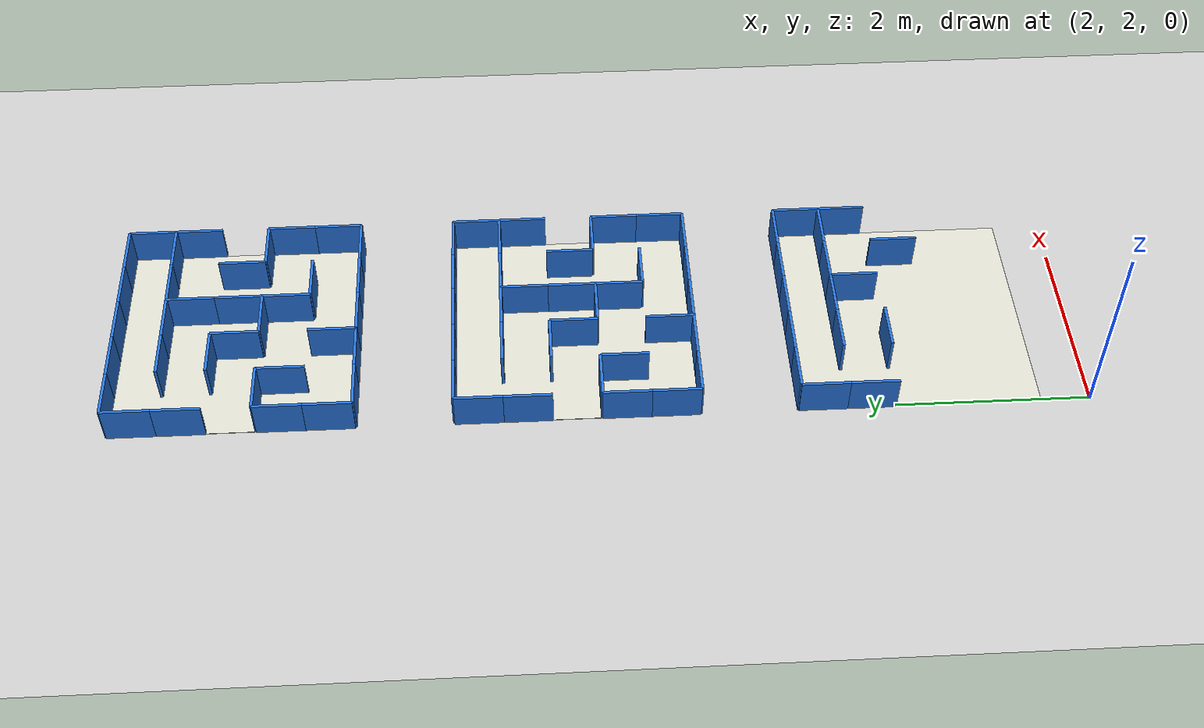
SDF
<sdf version="1.10">
 <world name="nhom8_mecanum">
  <model name="ground_plane">
   <static>true</static>
   <link name="link">
    <collision name="collision">
     <geometry><plane><normal>0 0 1</normal><size>50 50</size></plane></geometry>
     <surface><friction><ode><mu>40</mu></ode></friction></surface>
    </collision>
    <visual name="visual">
     <geometry><plane><normal>0 0 1</normal><size>50 50</size></plane></geometry>
     <material>
      <ambient>0.8 0.8 0.8 1</ambient>
      <diffuse>0.8 0.8 0.8 1</diffuse>
      <specular>0.8 0.8 0.8 1</specular>
     </material>
    </visual>
   </link>
  </model>
  <model name="hw_0_3_m2">
   <static>true</static>
   <pose>2.0000 4.250000 0.2000 0 0 1.5708</pose>
   <link name="link">
    <collision name="col"><geometry><box><size>0.5000 0.0300 0.4000</size></box></geometry></collision>
    <visual name="vis">
     <geometry><box><size>0.5000 0.0300 0.4000</size></box></geometry>
     <material><ambient>0.15 0.45 0.85 1</ambient><diffuse>0.15 0.45 0.85 1</diffuse></material>
    </visual>
   </link>
  </model>
  <model name="hw_0_4_m2">
   <static>true</static>
   <pose>2.0000 4.750000 0.2000 0 0 1.5708</pose>
   <link name="link">
    <collision name="col"><geometry><box><size>0.5000 0.0300 0.4000</size></box></geometry></collision>
    <visual name="vis">
     <geometry><box><size>0.5000 0.0300 0.4000</size></box></geometry>
     <material><ambient>0.15 0.45 0.85 1</ambient><diffuse>0.15 0.45 0.85 1</diffuse></material>
    </visual>
   </link>
  </model>
  <model name="hw_3_3_m2">
   <static>true</static>
   <pose>3.5000 4.250000 0.2000 0 0 1.5708</pose>
   <link name="link">
    <collision name="col"><geometry><box><size>0.5000 0.0300 0.4000</size></box></geometry></collision>
    <visual name="vis">
     <geometry><box><size>0.5000 0.0300 0.4000</size></box></geometry>
     <material><ambient>0.15 0.45 0.85 1</ambient><diffuse>0.15 0.45 0.85 1</diffuse></material>
    </visual>
   </link>
  </model>
  <model name="hw_4_2_m2">
   <static>true</static>
   <pose>4.0000 3.750000 0.2000 0 0 1.5708</pose>
   <link name="link">
    <collision name="col"><geometry><box><size>0.5000 0.0300 0.4000</size></box></geometry></collision>
    <visual name="vis">
     <geometry><box><size>0.5000 0.0300 0.4000</size></box></geometry>
     <material><ambient>0.15 0.45 0.85 1</ambient><diffuse>0.15 0.45 0.85 1</diffuse></material>
    </visual>
   </link>
  </model>
  <model name="hw_5_3_m2">
   <static>true</static>
   <pose>4.5000 4.250000 0.2000 0 0 1.5708</pose>
   <link name="link">
    <collision name="col"><geometry><box><size>0.5000 0.0300 0.4000</size></box></geometry></collision>
    <visual name="vis">
     <geometry><box><size>0.5000 0.0300 0.4000</size></box></geometry>
     <material><ambient>0.15 0.45 0.85 1</ambient><diffuse>0.15 0.45 0.85 1</diffuse></material>
    </visual>
   </link>
  </model>
  <model name="hw_5_4_m2">
   <static>true</static>
   <pose>4.5000 4.750000 0.2000 0 0 1.5708</pose>
   <link name="link">
    <collision name="col"><geometry><box><size>0.5000 0.0300 0.4000</size></box></geometry></collision>
    <visual name="vis">
     <geometry><box><size>0.5000 0.0300 0.4000</size></box></geometry>
     <material><ambient>0.15 0.45 0.85 1</ambient><diffuse>0.15 0.45 0.85 1</diffuse></material>
    </visual>
   </link>
  </model>
  <model name="vw_0_5_m2">
   <static>true</static>
   <pose>2.2500 5.000000 0.2000 0 0 1.5708</pose>
   <link name="link">
    <collision name="col"><geometry><box><size>0.0300 0.5000 0.4000</size></box></geometry></collision>
    <visual name="vis">
     <geometry><box><size>0.0300 0.5000 0.4000</size></box></geometry>
     <material><ambient>0.15 0.45 0.85 1</ambient><diffuse>0.15 0.45 0.85 1</diffuse></material>
    </visual>
   </link>
  </model>
  <model name="vw_1_3_m2">
   <static>true</static>
   <pose>2.7500 4.000000 0.2000 0 0 1.5708</pose>
   <link name="link">
    <collision name="col"><geometry><box><size>0.0300 0.5000 0.4000</size></box></geometry></collision>
    <visual name="vis">
     <geometry><box><size>0.0300 0.5000 0.4000</size></box></geometry>
     <material><ambient>0.15 0.45 0.85 1</ambient><diffuse>0.15 0.45 0.85 1</diffuse></material>
    </visual>
   </link>
  </model>
  <model name="vw_1_4_m2">
   <static>true</static>
   <pose>2.7500 4.500000 0.2000 0 0 1.5708</pose>
   <link name="link">
    <collision name="col"><geometry><box><size>0.0300 0.5000 0.4000</size></box></geometry></collision>
    <visual name="vis">
     <geometry><box><size>0.0300 0.5000 0.4000</size></box></geometry>
     <material><ambient>0.15 0.45 0.85 1</ambient><diffuse>0.15 0.45 0.85 1</diffuse></material>
    </visual>
   </link>
  </model>
  <model name="vw_1_5_m2">
   <static>true</static>
   <pose>2.7500 5.000000 0.2000 0 0 1.5708</pose>
   <link name="link">
    <collision name="col"><geometry><box><size>0.0300 0.5000 0.4000</size></box></geometry></collision>
    <visual name="vis">
     <geometry><box><size>0.0300 0.5000 0.4000</size></box></geometry>
     <material><ambient>0.15 0.45 0.85 1</ambient><diffuse>0.15 0.45 0.85 1</diffuse></material>
    </visual>
   </link>
  </model>
  <model name="vw_2_4_m2">
   <static>true</static>
   <pose>3.2500 4.500000 0.2000 0 0 1.5708</pose>
   <link name="link">
    <collision name="col"><geometry><box><size>0.0300 0.5000 0.4000</size></box></geometry></collision>
    <visual name="vis">
     <geometry><box><size>0.0300 0.5000 0.4000</size></box></geometry>
     <material><ambient>0.15 0.45 0.85 1</ambient><diffuse>0.15 0.45 0.85 1</diffuse></material>
    </visual>
   </link>
  </model>
  <model name="vw_2_5_m2">
   <static>true</static>
   <pose>3.2500 5.000000 0.2000 0 0 1.5708</pose>
   <link name="link">
    <collision name="col"><geometry><box><size>0.0300 0.5000 0.4000</size></box></geometry></collision>
    <visual name="vis">
     <geometry><box><size>0.0300 0.5000 0.4000</size></box></geometry>
     <material><ambient>0.15 0.45 0.85 1</ambient><diffuse>0.15 0.45 0.85 1</diffuse></material>
    </visual>
   </link>
  </model>
  <model name="vw_3_4_m2">
   <static>true</static>
   <pose>3.7500 4.500000 0.2000 0 0 1.5708</pose>
   <link name="link">
    <collision name="col"><geometry><box><size>0.0300 0.5000 0.4000</size></box></geometry></collision>
    <visual name="vis">
     <geometry><box><size>0.0300 0.5000 0.4000</size></box></geometry>
     <material><ambient>0.15 0.45 0.85 1</ambient><diffuse>0.15 0.45 0.85 1</diffuse></material>
    </visual>
   </link>
  </model>
  <model name="vw_3_5_m2">
   <static>true</static>
   <pose>3.7500 5.000000 0.2000 0 0 1.5708</pose>
   <link name="link">
    <collision name="col"><geometry><box><size>0.0300 0.5000 0.4000</size></box></geometry></collision>
    <visual name="vis">
     <geometry><box><size>0.0300 0.5000 0.4000</size></box></geometry>
     <material><ambient>0.15 0.45 0.85 1</ambient><diffuse>0.15 0.45 0.85 1</diffuse></material>
    </visual>
   </link>
  </model>
  <model name="vw_4_4_m2">
   <static>true</static>
   <pose>4.2500 4.500000 0.2000 0 0 1.5708</pose>
   <link name="link">
    <collision name="col"><geometry><box><size>0.0300 0.5000 0.4000</size></box></geometry></collision>
    <visual name="vis">
     <geometry><box><size>0.0300 0.5000 0.4000</size></box></geometry>
     <material><ambient>0.15 0.45 0.85 1</ambient><diffuse>0.15 0.45 0.85 1</diffuse></material>
    </visual>
   </link>
  </model>
  <model name="vw_4_5_m2">
   <static>true</static>
   <pose>4.2500 5.000000 0.2000 0 0 1.5708</pose>
   <link name="link">
    <collision name="col"><geometry><box><size>0.0300 0.5000 0.4000</size></box></geometry></collision>
    <visual name="vis">
     <geometry><box><size>0.0300 0.5000 0.4000</size></box></geometry>
     <material><ambient>0.15 0.45 0.85 1</ambient><diffuse>0.15 0.45 0.85 1</diffuse></material>
    </visual>
   </link>
  </model>
  <model name="floor_m2">
   <static>true</static>
   <pose>3.2500 3.750000 -0.02 0 0 1.5708</pose>
   <link name="link">
    <collision name="col"><geometry><box><size>2.50 2.50 0.03</size></box></geometry></collision>
    <visual name="vis">
     <geometry><box><size>2.50 2.50 0.03</size></box></geometry>
     <material><ambient>0.87 0.87 0.82 1</ambient><diffuse>0.87 0.87 0.82 1</diffuse></material>
    </visual>
   </link>
  </model>
  <model name="hw_0_0_m3">
   <static>true</static>
   <pose>2.0000 6.250000 0.2000 0 0 1.5708</pose>
   <link name="link">
    <collision name="col"><geometry><box><size>0.5000 0.0300 0.4000</size></box></geometry></collision>
    <visual name="vis">
     <geometry><box><size>0.5000 0.0300 0.4000</size></box></geometry>
     <material><ambient>0.15 0.45 0.85 1</ambient><diffuse>0.15 0.45 0.85 1</diffuse></material>
    </visual>
   </link>
  </model>
  <model name="hw_0_1_m3">
   <static>true</static>
   <pose>2.0000 6.750000 0.2000 0 0 1.5708</pose>
   <link name="link">
    <collision name="col"><geometry><box><size>0.5000 0.0300 0.4000</size></box></geometry></collision>
    <visual name="vis">
     <geometry><box><size>0.5000 0.0300 0.4000</size></box></geometry>
     <material><ambient>0.15 0.45 0.85 1</ambient><diffuse>0.15 0.45 0.85 1</diffuse></material>
    </visual>
   </link>
  </model>
  <model name="hw_0_3_m3">
   <static>true</static>
   <pose>2.0000 7.750000 0.2000 0 0 1.5708</pose>
   <link name="link">
    <collision name="col"><geometry><box><size>0.5000 0.0300 0.4000</size></box></geometry></collision>
    <visual name="vis">
     <geometry><box><size>0.5000 0.0300 0.4000</size></box></geometry>
     <material><ambient>0.15 0.45 0.85 1</ambient><diffuse>0.15 0.45 0.85 1</diffuse></material>
    </visual>
   </link>
  </model>
  <model name="hw_0_4_m3">
   <static>true</static>
   <pose>2.0000 8.250000 0.2000 0 0 1.5708</pose>
   <link name="link">
    <collision name="col"><geometry><box><size>0.5000 0.0300 0.4000</size></box></geometry></collision>
    <visual name="vis">
     <geometry><box><size>0.5000 0.0300 0.4000</size></box></geometry>
     <material><ambient>0.15 0.45 0.85 1</ambient><diffuse>0.15 0.45 0.85 1</diffuse></material>
    </visual>
   </link>
  </model>
  <model name="hw_1_1_m3">
   <static>true</static>
   <pose>2.5000 6.750000 0.2000 0 0 1.5708</pose>
   <link name="link">
    <collision name="col"><geometry><box><size>0.5000 0.0300 0.4000</size></box></geometry></collision>
    <visual name="vis">
     <geometry><box><size>0.5000 0.0300 0.4000</size></box></geometry>
     <material><ambient>0.15 0.45 0.85 1</ambient><diffuse>0.15 0.45 0.85 1</diffuse></material>
    </visual>
   </link>
  </model>
  <model name="hw_2_0_m3">
   <static>true</static>
   <pose>3.0000 6.250000 0.2000 0 0 1.5708</pose>
   <link name="link">
    <collision name="col"><geometry><box><size>0.5000 0.0300 0.4000</size></box></geometry></collision>
    <visual name="vis">
     <geometry><box><size>0.5000 0.0300 0.4000</size></box></geometry>
     <material><ambient>0.15 0.45 0.85 1</ambient><diffuse>0.15 0.45 0.85 1</diffuse></material>
    </visual>
   </link>
  </model>
  <model name="hw_2_2_m3">
   <static>true</static>
   <pose>3.0000 7.250000 0.2000 0 0 1.5708</pose>
   <link name="link">
    <collision name="col"><geometry><box><size>0.5000 0.0300 0.4000</size></box></geometry></collision>
    <visual name="vis">
     <geometry><box><size>0.5000 0.0300 0.4000</size></box></geometry>
     <material><ambient>0.15 0.45 0.85 1</ambient><diffuse>0.15 0.45 0.85 1</diffuse></material>
    </visual>
   </link>
  </model>
  <model name="hw_3_1_m3">
   <static>true</static>
   <pose>3.5000 6.750000 0.2000 0 0 1.5708</pose>
   <link name="link">
    <collision name="col"><geometry><box><size>0.5000 0.0300 0.4000</size></box></geometry></collision>
    <visual name="vis">
     <geometry><box><size>0.5000 0.0300 0.4000</size></box></geometry>
     <material><ambient>0.15 0.45 0.85 1</ambient><diffuse>0.15 0.45 0.85 1</diffuse></material>
    </visual>
   </link>
  </model>
  <model name="hw_3_2_m3">
   <static>true</static>
   <pose>3.5000 7.250000 0.2000 0 0 1.5708</pose>
   <link name="link">
    <collision name="col"><geometry><box><size>0.5000 0.0300 0.4000</size></box></geometry></collision>
    <visual name="vis">
     <geometry><box><size>0.5000 0.0300 0.4000</size></box></geometry>
     <material><ambient>0.15 0.45 0.85 1</ambient><diffuse>0.15 0.45 0.85 1</diffuse></material>
    </visual>
   </link>
  </model>
  <model name="hw_3_3_m3">
   <static>true</static>
   <pose>3.5000 7.750000 0.2000 0 0 1.5708</pose>
   <link name="link">
    <collision name="col"><geometry><box><size>0.5000 0.0300 0.4000</size></box></geometry></collision>
    <visual name="vis">
     <geometry><box><size>0.5000 0.0300 0.4000</size></box></geometry>
     <material><ambient>0.15 0.45 0.85 1</ambient><diffuse>0.15 0.45 0.85 1</diffuse></material>
    </visual>
   </link>
  </model>
  <model name="hw_4_2_m3">
   <static>true</static>
   <pose>4.0000 7.250000 0.2000 0 0 1.5708</pose>
   <link name="link">
    <collision name="col"><geometry><box><size>0.5000 0.0300 0.4000</size></box></geometry></collision>
    <visual name="vis">
     <geometry><box><size>0.5000 0.0300 0.4000</size></box></geometry>
     <material><ambient>0.15 0.45 0.85 1</ambient><diffuse>0.15 0.45 0.85 1</diffuse></material>
    </visual>
   </link>
  </model>
  <model name="hw_5_0_m3">
   <static>true</static>
   <pose>4.5000 6.250000 0.2000 0 0 1.5708</pose>
   <link name="link">
    <collision name="col"><geometry><box><size>0.5000 0.0300 0.4000</size></box></geometry></collision>
    <visual name="vis">
     <geometry><box><size>0.5000 0.0300 0.4000</size></box></geometry>
     <material><ambient>0.15 0.45 0.85 1</ambient><diffuse>0.15 0.45 0.85 1</diffuse></material>
    </visual>
   </link>
  </model>
  <model name="hw_5_1_m3">
   <static>true</static>
   <pose>4.5000 6.750000 0.2000 0 0 1.5708</pose>
   <link name="link">
    <collision name="col"><geometry><box><size>0.5000 0.0300 0.4000</size></box></geometry></collision>
    <visual name="vis">
     <geometry><box><size>0.5000 0.0300 0.4000</size></box></geometry>
     <material><ambient>0.15 0.45 0.85 1</ambient><diffuse>0.15 0.45 0.85 1</diffuse></material>
    </visual>
   </link>
  </model>
  <model name="hw_5_3_m3">
   <static>true</static>
   <pose>4.5000 7.750000 0.2000 0 0 1.5708</pose>
   <link name="link">
    <collision name="col"><geometry><box><size>0.5000 0.0300 0.4000</size></box></geometry></collision>
    <visual name="vis">
     <geometry><box><size>0.5000 0.0300 0.4000</size></box></geometry>
     <material><ambient>0.15 0.45 0.85 1</ambient><diffuse>0.15 0.45 0.85 1</diffuse></material>
    </visual>
   </link>
  </model>
  <model name="hw_5_4_m3">
   <static>true</static>
   <pose>4.5000 8.250000 0.2000 0 0 1.5708</pose>
   <link name="link">
    <collision name="col"><geometry><box><size>0.5000 0.0300 0.4000</size></box></geometry></collision>
    <visual name="vis">
     <geometry><box><size>0.5000 0.0300 0.4000</size></box></geometry>
     <material><ambient>0.15 0.45 0.85 1</ambient><diffuse>0.15 0.45 0.85 1</diffuse></material>
    </visual>
   </link>
  </model>
  <model name="vw_0_0_m3">
   <static>true</static>
   <pose>2.2500 6.000000 0.2000 0 0 1.5708</pose>
   <link name="link">
    <collision name="col"><geometry><box><size>0.0300 0.5000 0.4000</size></box></geometry></collision>
    <visual name="vis">
     <geometry><box><size>0.0300 0.5000 0.4000</size></box></geometry>
     <material><ambient>0.15 0.45 0.85 1</ambient><diffuse>0.15 0.45 0.85 1</diffuse></material>
    </visual>
   </link>
  </model>
  <model name="vw_0_2_m3">
   <static>true</static>
   <pose>2.2500 7.000000 0.2000 0 0 1.5708</pose>
   <link name="link">
    <collision name="col"><geometry><box><size>0.0300 0.5000 0.4000</size></box></geometry></collision>
    <visual name="vis">
     <geometry><box><size>0.0300 0.5000 0.4000</size></box></geometry>
     <material><ambient>0.15 0.45 0.85 1</ambient><diffuse>0.15 0.45 0.85 1</diffuse></material>
    </visual>
   </link>
  </model>
  <model name="vw_0_5_m3">
   <static>true</static>
   <pose>2.2500 8.500000 0.2000 0 0 1.5708</pose>
   <link name="link">
    <collision name="col"><geometry><box><size>0.0300 0.5000 0.4000</size></box></geometry></collision>
    <visual name="vis">
     <geometry><box><size>0.0300 0.5000 0.4000</size></box></geometry>
     <material><ambient>0.15 0.45 0.85 1</ambient><diffuse>0.15 0.45 0.85 1</diffuse></material>
    </visual>
   </link>
  </model>
  <model name="vw_1_0_m3">
   <static>true</static>
   <pose>2.7500 6.000000 0.2000 0 0 1.5708</pose>
   <link name="link">
    <collision name="col"><geometry><box><size>0.0300 0.5000 0.4000</size></box></geometry></collision>
    <visual name="vis">
     <geometry><box><size>0.0300 0.5000 0.4000</size></box></geometry>
     <material><ambient>0.15 0.45 0.85 1</ambient><diffuse>0.15 0.45 0.85 1</diffuse></material>
    </visual>
   </link>
  </model>
  <model name="vw_1_3_m3">
   <static>true</static>
   <pose>2.7500 7.500000 0.2000 0 0 1.5708</pose>
   <link name="link">
    <collision name="col"><geometry><box><size>0.0300 0.5000 0.4000</size></box></geometry></collision>
    <visual name="vis">
     <geometry><box><size>0.0300 0.5000 0.4000</size></box></geometry>
     <material><ambient>0.15 0.45 0.85 1</ambient><diffuse>0.15 0.45 0.85 1</diffuse></material>
    </visual>
   </link>
  </model>
  <model name="vw_1_4_m3">
   <static>true</static>
   <pose>2.7500 8.000000 0.2000 0 0 1.5708</pose>
   <link name="link">
    <collision name="col"><geometry><box><size>0.0300 0.5000 0.4000</size></box></geometry></collision>
    <visual name="vis">
     <geometry><box><size>0.0300 0.5000 0.4000</size></box></geometry>
     <material><ambient>0.15 0.45 0.85 1</ambient><diffuse>0.15 0.45 0.85 1</diffuse></material>
    </visual>
   </link>
  </model>
  <model name="vw_1_5_m3">
   <static>true</static>
   <pose>2.7500 8.500000 0.2000 0 0 1.5708</pose>
   <link name="link">
    <collision name="col"><geometry><box><size>0.0300 0.5000 0.4000</size></box></geometry></collision>
    <visual name="vis">
     <geometry><box><size>0.0300 0.5000 0.4000</size></box></geometry>
     <material><ambient>0.15 0.45 0.85 1</ambient><diffuse>0.15 0.45 0.85 1</diffuse></material>
    </visual>
   </link>
  </model>
  <model name="vw_2_0_m3">
   <static>true</static>
   <pose>3.2500 6.000000 0.2000 0 0 1.5708</pose>
   <link name="link">
    <collision name="col"><geometry><box><size>0.0300 0.5000 0.4000</size></box></geometry></collision>
    <visual name="vis">
     <geometry><box><size>0.0300 0.5000 0.4000</size></box></geometry>
     <material><ambient>0.15 0.45 0.85 1</ambient><diffuse>0.15 0.45 0.85 1</diffuse></material>
    </visual>
   </link>
  </model>
  <model name="vw_2_2_m3">
   <static>true</static>
   <pose>3.2500 7.000000 0.2000 0 0 1.5708</pose>
   <link name="link">
    <collision name="col"><geometry><box><size>0.0300 0.5000 0.4000</size></box></geometry></collision>
    <visual name="vis">
     <geometry><box><size>0.0300 0.5000 0.4000</size></box></geometry>
     <material><ambient>0.15 0.45 0.85 1</ambient><diffuse>0.15 0.45 0.85 1</diffuse></material>
    </visual>
   </link>
  </model>
  <model name="vw_2_4_m3">
   <static>true</static>
   <pose>3.2500 8.000000 0.2000 0 0 1.5708</pose>
   <link name="link">
    <collision name="col"><geometry><box><size>0.0300 0.5000 0.4000</size></box></geometry></collision>
    <visual name="vis">
     <geometry><box><size>0.0300 0.5000 0.4000</size></box></geometry>
     <material><ambient>0.15 0.45 0.85 1</ambient><diffuse>0.15 0.45 0.85 1</diffuse></material>
    </visual>
   </link>
  </model>
  <model name="vw_2_5_m3">
   <static>true</static>
   <pose>3.2500 8.500000 0.2000 0 0 1.5708</pose>
   <link name="link">
    <collision name="col"><geometry><box><size>0.0300 0.5000 0.4000</size></box></geometry></collision>
    <visual name="vis">
     <geometry><box><size>0.0300 0.5000 0.4000</size></box></geometry>
     <material><ambient>0.15 0.45 0.85 1</ambient><diffuse>0.15 0.45 0.85 1</diffuse></material>
    </visual>
   </link>
  </model>
  <model name="vw_3_0_m3">
   <static>true</static>
   <pose>3.7500 6.000000 0.2000 0 0 1.5708</pose>
   <link name="link">
    <collision name="col"><geometry><box><size>0.0300 0.5000 0.4000</size></box></geometry></collision>
    <visual name="vis">
     <geometry><box><size>0.0300 0.5000 0.4000</size></box></geometry>
     <material><ambient>0.15 0.45 0.85 1</ambient><diffuse>0.15 0.45 0.85 1</diffuse></material>
    </visual>
   </link>
  </model>
  <model name="vw_3_1_m3">
   <static>true</static>
   <pose>3.7500 6.500000 0.2000 0 0 1.5708</pose>
   <link name="link">
    <collision name="col"><geometry><box><size>0.0300 0.5000 0.4000</size></box></geometry></collision>
    <visual name="vis">
     <geometry><box><size>0.0300 0.5000 0.4000</size></box></geometry>
     <material><ambient>0.15 0.45 0.85 1</ambient><diffuse>0.15 0.45 0.85 1</diffuse></material>
    </visual>
   </link>
  </model>
  <model name="vw_3_4_m3">
   <static>true</static>
   <pose>3.7500 8.000000 0.2000 0 0 1.5708</pose>
   <link name="link">
    <collision name="col"><geometry><box><size>0.0300 0.5000 0.4000</size></box></geometry></collision>
    <visual name="vis">
     <geometry><box><size>0.0300 0.5000 0.4000</size></box></geometry>
     <material><ambient>0.15 0.45 0.85 1</ambient><diffuse>0.15 0.45 0.85 1</diffuse></material>
    </visual>
   </link>
  </model>
  <model name="vw_3_5_m3">
   <static>true</static>
   <pose>3.7500 8.500000 0.2000 0 0 1.5708</pose>
   <link name="link">
    <collision name="col"><geometry><box><size>0.0300 0.5000 0.4000</size></box></geometry></collision>
    <visual name="vis">
     <geometry><box><size>0.0300 0.5000 0.4000</size></box></geometry>
     <material><ambient>0.15 0.45 0.85 1</ambient><diffuse>0.15 0.45 0.85 1</diffuse></material>
    </visual>
   </link>
  </model>
  <model name="vw_4_0_m3">
   <static>true</static>
   <pose>4.2500 6.000000 0.2000 0 0 1.5708</pose>
   <link name="link">
    <collision name="col"><geometry><box><size>0.0300 0.5000 0.4000</size></box></geometry></collision>
    <visual name="vis">
     <geometry><box><size>0.0300 0.5000 0.4000</size></box></geometry>
     <material><ambient>0.15 0.45 0.85 1</ambient><diffuse>0.15 0.45 0.85 1</diffuse></material>
    </visual>
   </link>
  </model>
  <model name="vw_4_2_m3">
   <static>true</static>
   <pose>4.2500 7.000000 0.2000 0 0 1.5708</pose>
   <link name="link">
    <collision name="col"><geometry><box><size>0.0300 0.5000 0.4000</size></box></geometry></collision>
    <visual name="vis">
     <geometry><box><size>0.0300 0.5000 0.4000</size></box></geometry>
     <material><ambient>0.15 0.45 0.85 1</ambient><diffuse>0.15 0.45 0.85 1</diffuse></material>
    </visual>
   </link>
  </model>
  <model name="vw_4_4_m3">
   <static>true</static>
   <pose>4.2500 8.000000 0.2000 0 0 1.5708</pose>
   <link name="link">
    <collision name="col"><geometry><box><size>0.0300 0.5000 0.4000</size></box></geometry></collision>
    <visual name="vis">
     <geometry><box><size>0.0300 0.5000 0.4000</size></box></geometry>
     <material><ambient>0.15 0.45 0.85 1</ambient><diffuse>0.15 0.45 0.85 1</diffuse></material>
    </visual>
   </link>
  </model>
  <model name="vw_4_5_m3">
   <static>true</static>
   <pose>4.2500 8.500000 0.2000 0 0 1.5708</pose>
   <link name="link">
    <collision name="col"><geometry><box><size>0.0300 0.5000 0.4000</size></box></geometry></collision>
    <visual name="vis">
     <geometry><box><size>0.0300 0.5000 0.4000</size></box></geometry>
     <material><ambient>0.15 0.45 0.85 1</ambient><diffuse>0.15 0.45 0.85 1</diffuse></material>
    </visual>
   </link>
  </model>
  <model name="floor_m3">
   <static>true</static>
   <pose>3.2500 7.250000 -0.02 0 0 1.5708</pose>
   <link name="link">
    <collision name="col"><geometry><box><size>2.50 2.50 0.03</size></box></geometry></collision>
    <visual name="vis">
     <geometry><box><size>2.50 2.50 0.03</size></box></geometry>
     <material><ambient>0.87 0.87 0.82 1</ambient><diffuse>0.87 0.87 0.82 1</diffuse></material>
    </visual>
   </link>
  </model>
  <model name="hw_0_0_m4">
   <static>true</static>
   <pose>2.0000 9.750000 0.2000 0 0 1.5708</pose>
   <link name="link">
    <collision name="col"><geometry><box><size>0.5000 0.0300 0.4000</size></box></geometry></collision>
    <visual name="vis">
     <geometry><box><size>0.5000 0.0300 0.4000</size></box></geometry>
     <material><ambient>0.15 0.45 0.85 1</ambient><diffuse>0.15 0.45 0.85 1</diffuse></material>
    </visual>
   </link>
  </model>
  <model name="hw_0_1_m4">
   <static>true</static>
   <pose>2.0000 10.250000 0.2000 0 0 1.5708</pose>
   <link name="link">
    <collision name="col"><geometry><box><size>0.5000 0.0300 0.4000</size></box></geometry></collision>
    <visual name="vis">
     <geometry><box><size>0.5000 0.0300 0.4000</size></box></geometry>
     <material><ambient>0.15 0.45 0.85 1</ambient><diffuse>0.15 0.45 0.85 1</diffuse></material>
    </visual>
   </link>
  </model>
  <model name="hw_0_3_m4">
   <static>true</static>
   <pose>2.0000 11.250000 0.2000 0 0 1.5708</pose>
   <link name="link">
    <collision name="col"><geometry><box><size>0.5000 0.0300 0.4000</size></box></geometry></collision>
    <visual name="vis">
     <geometry><box><size>0.5000 0.0300 0.4000</size></box></geometry>
     <material><ambient>0.15 0.45 0.85 1</ambient><diffuse>0.15 0.45 0.85 1</diffuse></material>
    </visual>
   </link>
  </model>
  <model name="hw_0_4_m4">
   <static>true</static>
   <pose>2.0000 11.750000 0.2000 0 0 1.5708</pose>
   <link name="link">
    <collision name="col"><geometry><box><size>0.5000 0.0300 0.4000</size></box></geometry></collision>
    <visual name="vis">
     <geometry><box><size>0.5000 0.0300 0.4000</size></box></geometry>
     <material><ambient>0.15 0.45 0.85 1</ambient><diffuse>0.15 0.45 0.85 1</diffuse></material>
    </visual>
   </link>
  </model>
  <model name="hw_1_1_m4">
   <static>true</static>
   <pose>2.5000 10.250000 0.2000 0 0 1.5708</pose>
   <link name="link">
    <collision name="col"><geometry><box><size>0.5000 0.0300 0.4000</size></box></geometry></collision>
    <visual name="vis">
     <geometry><box><size>0.5000 0.0300 0.4000</size></box></geometry>
     <material><ambient>0.15 0.45 0.85 1</ambient><diffuse>0.15 0.45 0.85 1</diffuse></material>
    </visual>
   </link>
  </model>
  <model name="hw_2_0_m4">
   <static>true</static>
   <pose>3.0000 9.750000 0.2000 0 0 1.5708</pose>
   <link name="link">
    <collision name="col"><geometry><box><size>0.5000 0.0300 0.4000</size></box></geometry></collision>
    <visual name="vis">
     <geometry><box><size>0.5000 0.0300 0.4000</size></box></geometry>
     <material><ambient>0.15 0.45 0.85 1</ambient><diffuse>0.15 0.45 0.85 1</diffuse></material>
    </visual>
   </link>
  </model>
  <model name="hw_2_2_m4">
   <static>true</static>
   <pose>3.0000 10.750000 0.2000 0 0 1.5708</pose>
   <link name="link">
    <collision name="col"><geometry><box><size>0.5000 0.0300 0.4000</size></box></geometry></collision>
    <visual name="vis">
     <geometry><box><size>0.5000 0.0300 0.4000</size></box></geometry>
     <material><ambient>0.15 0.45 0.85 1</ambient><diffuse>0.15 0.45 0.85 1</diffuse></material>
    </visual>
   </link>
  </model>
  <model name="hw_3_1_m4">
   <static>true</static>
   <pose>3.5000 10.250000 0.2000 0 0 1.5708</pose>
   <link name="link">
    <collision name="col"><geometry><box><size>0.5000 0.0300 0.4000</size></box></geometry></collision>
    <visual name="vis">
     <geometry><box><size>0.5000 0.0300 0.4000</size></box></geometry>
     <material><ambient>0.15 0.45 0.85 1</ambient><diffuse>0.15 0.45 0.85 1</diffuse></material>
    </visual>
   </link>
  </model>
  <model name="hw_3_2_m4">
   <static>true</static>
   <pose>3.5000 10.750000 0.2000 0 0 1.5708</pose>
   <link name="link">
    <collision name="col"><geometry><box><size>0.5000 0.0300 0.4000</size></box></geometry></collision>
    <visual name="vis">
     <geometry><box><size>0.5000 0.0300 0.4000</size></box></geometry>
     <material><ambient>0.15 0.45 0.85 1</ambient><diffuse>0.15 0.45 0.85 1</diffuse></material>
    </visual>
   </link>
  </model>
  <model name="hw_3_3_m4">
   <static>true</static>
   <pose>3.5000 11.250000 0.2000 0 0 1.5708</pose>
   <link name="link">
    <collision name="col"><geometry><box><size>0.5000 0.0300 0.4000</size></box></geometry></collision>
    <visual name="vis">
     <geometry><box><size>0.5000 0.0300 0.4000</size></box></geometry>
     <material><ambient>0.15 0.45 0.85 1</ambient><diffuse>0.15 0.45 0.85 1</diffuse></material>
    </visual>
   </link>
  </model>
  <model name="hw_4_2_m4">
   <static>true</static>
   <pose>4.0000 10.750000 0.2000 0 0 1.5708</pose>
   <link name="link">
    <collision name="col"><geometry><box><size>0.5000 0.0300 0.4000</size></box></geometry></collision>
    <visual name="vis">
     <geometry><box><size>0.5000 0.0300 0.4000</size></box></geometry>
     <material><ambient>0.15 0.45 0.85 1</ambient><diffuse>0.15 0.45 0.85 1</diffuse></material>
    </visual>
   </link>
  </model>
  <model name="hw_5_0_m4">
   <static>true</static>
   <pose>4.5000 9.750000 0.2000 0 0 1.5708</pose>
   <link name="link">
    <collision name="col"><geometry><box><size>0.5000 0.0300 0.4000</size></box></geometry></collision>
    <visual name="vis">
     <geometry><box><size>0.5000 0.0300 0.4000</size></box></geometry>
     <material><ambient>0.15 0.45 0.85 1</ambient><diffuse>0.15 0.45 0.85 1</diffuse></material>
    </visual>
   </link>
  </model>
  <model name="hw_5_1_m4">
   <static>true</static>
   <pose>4.5000 10.250000 0.2000 0 0 1.5708</pose>
   <link name="link">
    <collision name="col"><geometry><box><size>0.5000 0.0300 0.4000</size></box></geometry></collision>
    <visual name="vis">
     <geometry><box><size>0.5000 0.0300 0.4000</size></box></geometry>
     <material><ambient>0.15 0.45 0.85 1</ambient><diffuse>0.15 0.45 0.85 1</diffuse></material>
    </visual>
   </link>
  </model>
  <model name="hw_5_3_m4">
   <static>true</static>
   <pose>4.5000 11.250000 0.2000 0 0 1.5708</pose>
   <link name="link">
    <collision name="col"><geometry><box><size>0.5000 0.0300 0.4000</size></box></geometry></collision>
    <visual name="vis">
     <geometry><box><size>0.5000 0.0300 0.4000</size></box></geometry>
     <material><ambient>0.15 0.45 0.85 1</ambient><diffuse>0.15 0.45 0.85 1</diffuse></material>
    </visual>
   </link>
  </model>
  <model name="hw_5_4_m4">
   <static>true</static>
   <pose>4.5000 11.750000 0.2000 0 0 1.5708</pose>
   <link name="link">
    <collision name="col"><geometry><box><size>0.5000 0.0300 0.4000</size></box></geometry></collision>
    <visual name="vis">
     <geometry><box><size>0.5000 0.0300 0.4000</size></box></geometry>
     <material><ambient>0.15 0.45 0.85 1</ambient><diffuse>0.15 0.45 0.85 1</diffuse></material>
    </visual>
   </link>
  </model>
  <model name="vw_0_0_m4">
   <static>true</static>
   <pose>2.2500 9.500000 0.2000 0 0 1.5708</pose>
   <link name="link">
    <collision name="col"><geometry><box><size>0.0300 0.5000 0.4000</size></box></geometry></collision>
    <visual name="vis">
     <geometry><box><size>0.0300 0.5000 0.4000</size></box></geometry>
     <material><ambient>0.15 0.45 0.85 1</ambient><diffuse>0.15 0.45 0.85 1</diffuse></material>
    </visual>
   </link>
  </model>
  <model name="vw_0_2_m4">
   <static>true</static>
   <pose>2.2500 10.500000 0.2000 0 0 1.5708</pose>
   <link name="link">
    <collision name="col"><geometry><box><size>0.0300 0.5000 0.4000</size></box></geometry></collision>
    <visual name="vis">
     <geometry><box><size>0.0300 0.5000 0.4000</size></box></geometry>
     <material><ambient>0.15 0.45 0.85 1</ambient><diffuse>0.15 0.45 0.85 1</diffuse></material>
    </visual>
   </link>
  </model>
  <model name="vw_0_5_m4">
   <static>true</static>
   <pose>2.2500 12.000000 0.2000 0 0 1.5708</pose>
   <link name="link">
    <collision name="col"><geometry><box><size>0.0300 0.5000 0.4000</size></box></geometry></collision>
    <visual name="vis">
     <geometry><box><size>0.0300 0.5000 0.4000</size></box></geometry>
     <material><ambient>0.15 0.45 0.85 1</ambient><diffuse>0.15 0.45 0.85 1</diffuse></material>
    </visual>
   </link>
  </model>
  <model name="vw_1_0_m4">
   <static>true</static>
   <pose>2.7500 9.500000 0.2000 0 0 1.5708</pose>
   <link name="link">
    <collision name="col"><geometry><box><size>0.0300 0.5000 0.4000</size></box></geometry></collision>
    <visual name="vis">
     <geometry><box><size>0.0300 0.5000 0.4000</size></box></geometry>
     <material><ambient>0.15 0.45 0.85 1</ambient><diffuse>0.15 0.45 0.85 1</diffuse></material>
    </visual>
   </link>
  </model>
  <model name="vw_1_3_m4">
   <static>true</static>
   <pose>2.7500 11.000000 0.2000 0 0 1.5708</pose>
   <link name="link">
    <collision name="col"><geometry><box><size>0.0300 0.5000 0.4000</size></box></geometry></collision>
    <visual name="vis">
     <geometry><box><size>0.0300 0.5000 0.4000</size></box></geometry>
     <material><ambient>0.15 0.45 0.85 1</ambient><diffuse>0.15 0.45 0.85 1</diffuse></material>
    </visual>
   </link>
  </model>
  <model name="vw_1_4_m4">
   <static>true</static>
   <pose>2.7500 11.500000 0.2000 0 0 1.5708</pose>
   <link name="link">
    <collision name="col"><geometry><box><size>0.0300 0.5000 0.4000</size></box></geometry></collision>
    <visual name="vis">
     <geometry><box><size>0.0300 0.5000 0.4000</size></box></geometry>
     <material><ambient>0.15 0.45 0.85 1</ambient><diffuse>0.15 0.45 0.85 1</diffuse></material>
    </visual>
   </link>
  </model>
  <model name="vw_1_5_m4">
   <static>true</static>
   <pose>2.7500 12.000000 0.2000 0 0 1.5708</pose>
   <link name="link">
    <collision name="col"><geometry><box><size>0.0300 0.5000 0.4000</size></box></geometry></collision>
    <visual name="vis">
     <geometry><box><size>0.0300 0.5000 0.4000</size></box></geometry>
     <material><ambient>0.15 0.45 0.85 1</ambient><diffuse>0.15 0.45 0.85 1</diffuse></material>
    </visual>
   </link>
  </model>
  <model name="vw_2_0_m4">
   <static>true</static>
   <pose>3.2500 9.500000 0.2000 0 0 1.5708</pose>
   <link name="link">
    <collision name="col"><geometry><box><size>0.0300 0.5000 0.4000</size></box></geometry></collision>
    <visual name="vis">
     <geometry><box><size>0.0300 0.5000 0.4000</size></box></geometry>
     <material><ambient>0.15 0.45 0.85 1</ambient><diffuse>0.15 0.45 0.85 1</diffuse></material>
    </visual>
   </link>
  </model>
  <model name="vw_2_2_m4">
   <static>true</static>
   <pose>3.2500 10.500000 0.2000 0 0 1.5708</pose>
   <link name="link">
    <collision name="col"><geometry><box><size>0.0300 0.5000 0.4000</size></box></geometry></collision>
    <visual name="vis">
     <geometry><box><size>0.0300 0.5000 0.4000</size></box></geometry>
     <material><ambient>0.15 0.45 0.85 1</ambient><diffuse>0.15 0.45 0.85 1</diffuse></material>
    </visual>
   </link>
  </model>
  <model name="vw_2_4_m4">
   <static>true</static>
   <pose>3.2500 11.500000 0.2000 0 0 1.5708</pose>
   <link name="link">
    <collision name="col"><geometry><box><size>0.0300 0.5000 0.4000</size></box></geometry></collision>
    <visual name="vis">
     <geometry><box><size>0.0300 0.5000 0.4000</size></box></geometry>
     <material><ambient>0.15 0.45 0.85 1</ambient><diffuse>0.15 0.45 0.85 1</diffuse></material>
    </visual>
   </link>
  </model>
  <model name="vw_2_5_m4">
   <static>true</static>
   <pose>3.2500 12.000000 0.2000 0 0 1.5708</pose>
   <link name="link">
    <collision name="col"><geometry><box><size>0.0300 0.5000 0.4000</size></box></geometry></collision>
    <visual name="vis">
     <geometry><box><size>0.0300 0.5000 0.4000</size></box></geometry>
     <material><ambient>0.15 0.45 0.85 1</ambient><diffuse>0.15 0.45 0.85 1</diffuse></material>
    </visual>
   </link>
  </model>
  <model name="vw_3_0_m4">
   <static>true</static>
   <pose>3.7500 9.500000 0.2000 0 0 1.5708</pose>
   <link name="link">
    <collision name="col"><geometry><box><size>0.0300 0.5000 0.4000</size></box></geometry></collision>
    <visual name="vis">
     <geometry><box><size>0.0300 0.5000 0.4000</size></box></geometry>
     <material><ambient>0.15 0.45 0.85 1</ambient><diffuse>0.15 0.45 0.85 1</diffuse></material>
    </visual>
   </link>
  </model>
  <model name="vw_3_1_m4">
   <static>true</static>
   <pose>3.7500 10.000000 0.2000 0 0 1.5708</pose>
   <link name="link">
    <collision name="col"><geometry><box><size>0.0300 0.5000 0.4000</size></box></geometry></collision>
    <visual name="vis">
     <geometry><box><size>0.0300 0.5000 0.4000</size></box></geometry>
     <material><ambient>0.15 0.45 0.85 1</ambient><diffuse>0.15 0.45 0.85 1</diffuse></material>
    </visual>
   </link>
  </model>
  <model name="vw_3_4_m4">
   <static>true</static>
   <pose>3.7500 11.500000 0.2000 0 0 1.5708</pose>
   <link name="link">
    <collision name="col"><geometry><box><size>0.0300 0.5000 0.4000</size></box></geometry></collision>
    <visual name="vis">
     <geometry><box><size>0.0300 0.5000 0.4000</size></box></geometry>
     <material><ambient>0.15 0.45 0.85 1</ambient><diffuse>0.15 0.45 0.85 1</diffuse></material>
    </visual>
   </link>
  </model>
  <model name="vw_3_5_m4">
   <static>true</static>
   <pose>3.7500 12.000000 0.2000 0 0 1.5708</pose>
   <link name="link">
    <collision name="col"><geometry><box><size>0.0300 0.5000 0.4000</size></box></geometry></collision>
    <visual name="vis">
     <geometry><box><size>0.0300 0.5000 0.4000</size></box></geometry>
     <material><ambient>0.15 0.45 0.85 1</ambient><diffuse>0.15 0.45 0.85 1</diffuse></material>
    </visual>
   </link>
  </model>
  <model name="vw_4_0_m4">
   <static>true</static>
   <pose>4.2500 9.500000 0.2000 0 0 1.5708</pose>
   <link name="link">
    <collision name="col"><geometry><box><size>0.0300 0.5000 0.4000</size></box></geometry></collision>
    <visual name="vis">
     <geometry><box><size>0.0300 0.5000 0.4000</size></box></geometry>
     <material><ambient>0.15 0.45 0.85 1</ambient><diffuse>0.15 0.45 0.85 1</diffuse></material>
    </visual>
   </link>
  </model>
  <model name="vw_4_2_m4">
   <static>true</static>
   <pose>4.2500 10.500000 0.2000 0 0 1.5708</pose>
   <link name="link">
    <collision name="col"><geometry><box><size>0.0300 0.5000 0.4000</size></box></geometry></collision>
    <visual name="vis">
     <geometry><box><size>0.0300 0.5000 0.4000</size></box></geometry>
     <material><ambient>0.15 0.45 0.85 1</ambient><diffuse>0.15 0.45 0.85 1</diffuse></material>
    </visual>
   </link>
  </model>
  <model name="vw_4_4_m4">
   <static>true</static>
   <pose>4.2500 11.500000 0.2000 0 0 1.5708</pose>
   <link name="link">
    <collision name="col"><geometry><box><size>0.0300 0.5000 0.4000</size></box></geometry></collision>
    <visual name="vis">
     <geometry><box><size>0.0300 0.5000 0.4000</size></box></geometry>
     <material><ambient>0.15 0.45 0.85 1</ambient><diffuse>0.15 0.45 0.85 1</diffuse></material>
    </visual>
   </link>
  </model>
  <model name="vw_4_5_m4">
   <static>true</static>
   <pose>4.2500 12.000000 0.2000 0 0 1.5708</pose>
   <link name="link">
    <collision name="col"><geometry><box><size>0.0300 0.5000 0.4000</size></box></geometry></collision>
    <visual name="vis">
     <geometry><box><size>0.0300 0.5000 0.4000</size></box></geometry>
     <material><ambient>0.15 0.45 0.85 1</ambient><diffuse>0.15 0.45 0.85 1</diffuse></material>
    </visual>
   </link>
  </model>
  <model name="floor_m4">
   <static>true</static>
   <pose>3.2500 10.750000 -0.02 0 0 1.5708</pose>
   <link name="link">
    <collision name="col"><geometry><box><size>2.50 2.50 0.03</size></box></geometry></collision>
    <visual name="vis">
     <geometry><box><size>2.50 2.50 0.03</size></box></geometry>
     <material><ambient>0.87 0.87 0.82 1</ambient><diffuse>0.87 0.87 0.82 1</diffuse></material>
    </visual>
   </link>
  </model>
 </world>
</sdf>
